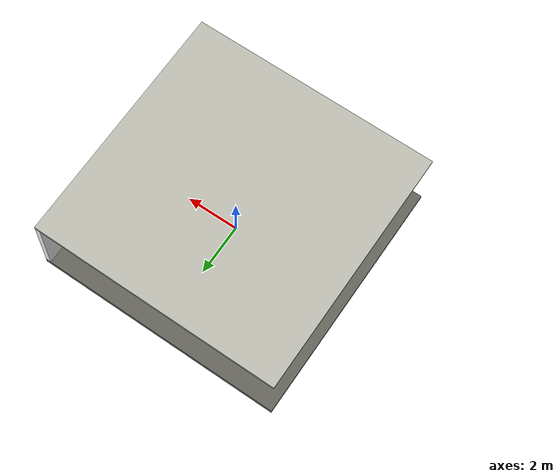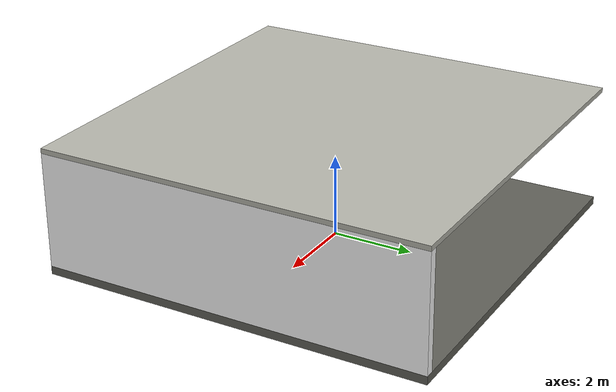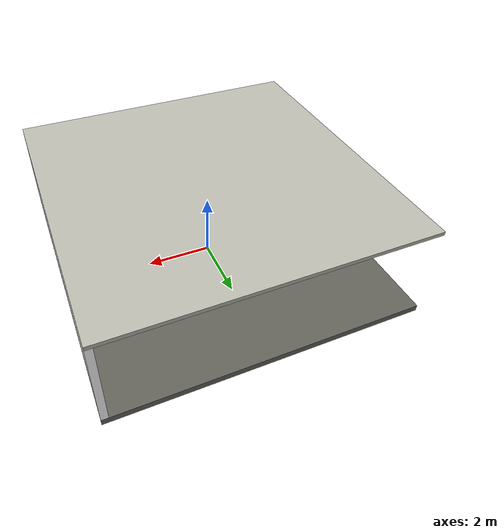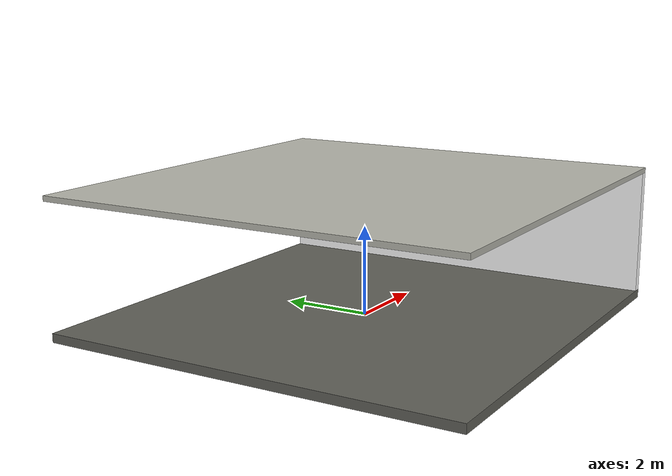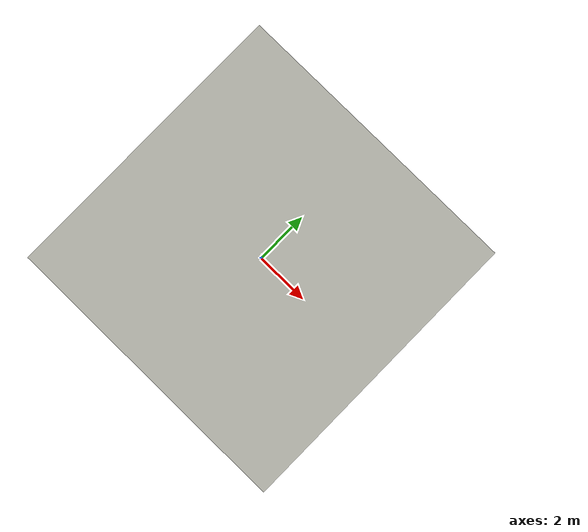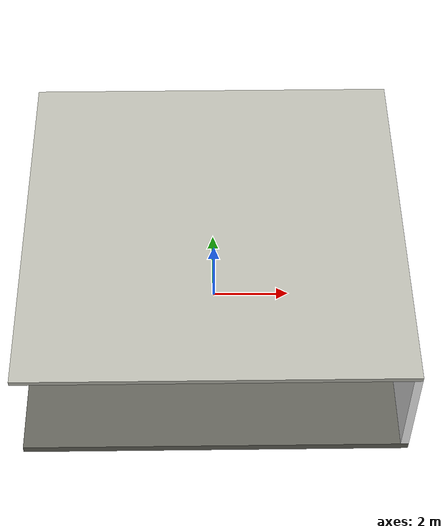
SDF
<sdf version="1.12">
 <world name="small_factory_room">
  <model name="factory_floor">
   <static>true</static>
   <link name="floor_link">
    <collision name="floor_collision">
     <geometry><box><size>9.5 9.5 0.20000000000000001</size></box></geometry>
     <surface><friction><ode><mu>1.2</mu><mu2>1.2</mu2></ode></friction></surface>
    </collision>
    <visual name="floor_visual">
     <geometry><box><size>9.5 9.5 0.20000000000000001</size></box></geometry>
     <material>
      <ambient>0.239999995 0.239999995 0.219999999 1</ambient>
      <diffuse>0.379999995 0.379999995 0.349999994 1</diffuse>
      <specular>0.119999997 0.119999997 0.100000001 1</specular>
     </material>
    </visual>
    <inertial>
     <mass>1</mass>
     <inertia><ixx>1</ixx><ixy>0</ixy><ixz>0</ixz><iyy>1</iyy><iyz>0</iyz><izz>1</izz></inertia>
    </inertial>
   </link>
  </model>
  <model name="factory_ceiling">
   <static>true</static>
   <link name="ceiling_link">
    <pose>0 0 2.96 0 0 0</pose>
    <collision name="ceiling_collision"><geometry><box><size>9.5 9.5 0.12</size></box></geometry></collision>
    <visual name="ceiling_visual">
     <geometry><box><size>9.5 9.5 0.12</size></box></geometry>
     <material>
      <ambient>0.579999983 0.579999983 0.560000002 1</ambient>
      <diffuse>0.720000029 0.720000029 0.680000007 1</diffuse>
      <specular>0.0299999993 0.0299999993 0.0299999993 1</specular>
     </material>
    </visual>
    <inertial>
     <mass>1</mass>
     <inertia><ixx>1</ixx><ixy>0</ixy><ixz>0</ixz><iyy>1</iyy><iyz>0</iyz><izz>1</izz></inertia>
    </inertial>
   </link>
  </model>
  <model name="east_wall">
   <static>true</static>
   <link name="east_wall_link">
    <pose>4.6500000000000004 0 1.5 0 0 1.5708</pose>
    <collision name="east_wall_collision">
     <geometry><box><size>9.5 0.20000000000000001 2.7999999999999998</size></box></geometry>
    </collision>
    <visual name="east_wall_visual">
     <geometry><box><size>9.5 0.20000000000000001 2.7999999999999998</size></box></geometry>
     <material>
      <ambient>1 1 1 1</ambient>
      <diffuse>1 1 1 1</diffuse>
      <specular>0.150000006 0.150000006 0.150000006 1</specular>
      <pbr>
       <metal>
        <albedo_map>file:///home/nearteh/Documents/Gazebo World/my_world/models/Walls/textures/plastered_wall_02_1k/textures/plastered_wall_02_diff_1k.jpg</albedo_map>
        <roughness_map>file:///home/nearteh/Documents/Gazebo World/my_world/models/Walls/textures/plastered_wall_02_1k/textures/plastered_wall_02_rough_1k.exr</roughness_map>
        <metalness>0.0</metalness>
        <ambient_occlusion_map>file:///home/nearteh/Documents/Gazebo World/my_world/models/Walls/textures/plastered_wall_02_1k/textures/plastered_wall_02_ao_1k.jpg</ambient_occlusion_map>
        <normal_map type="tangent">file:///home/nearteh/Documents/Gazebo World/my_world/models/Walls/textures/plastered_wall_02_1k/textures/plastered_wall_02_nor_gl_1k.exr</normal_map>
       </metal>
      </pbr>
     </material>
    </visual>
    <inertial>
     <mass>1</mass>
     <inertia><ixx>1</ixx><ixy>0</ixy><ixz>0</ixz><iyy>1</iyy><iyz>0</iyz><izz>1</izz></inertia>
    </inertial>
   </link>
   <pose>0 -4.9177328875771276e-14 -8.8817841970012523e-16 0 0 1.0769163338864018e-14</pose>
  </model>
 </world>
</sdf>
